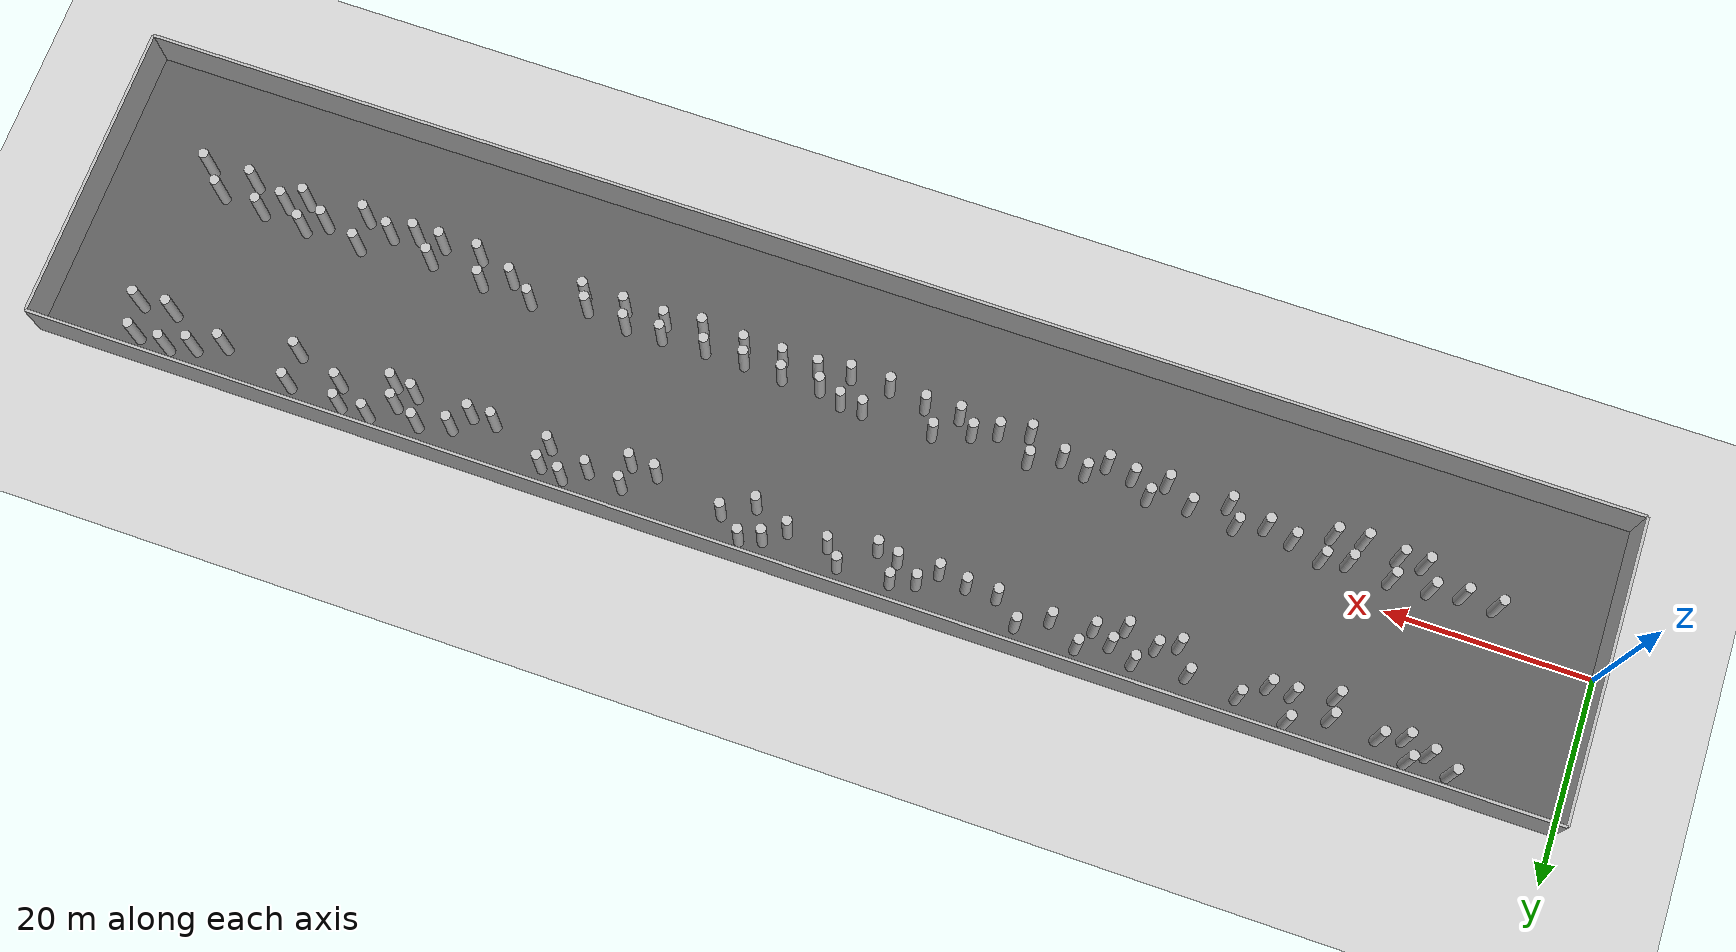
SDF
<?xml version="1.0" ?>
<sdf version="1.5">
  <world name="default">
    <plugin name="gazebo_ros_state" filename="libgazebo_ros_state.so">
      <ros>
        <namespace>/gazebo</namespace>
      </ros>
      <update_rate>20.0</update_rate>
    </plugin>

    <include><uri>model://sun</uri></include>
    <include><uri>model://ground_plane</uri></include>

    <model name="corridor_floor">
      <static>true</static>
      <pose>75 0 0.01 0 0 0</pose>
      <link name="link">
        <collision name="collision">
          <geometry><box><size>150 30 0.02</size></box></geometry>
        </collision>
        <visual name="visual">
          <geometry><box><size>150 30 0.02</size></box></geometry>
          <material>
            <ambient>0.25 0.25 0.25 1</ambient>
            <diffuse>0.35 0.35 0.35 1</diffuse>
          </material>
        </visual>
      </link>
    </model>

    <physics name="default_physics" default="0" type="ode">
      <gravity>0 0 -9.8066</gravity>
      <ode>
        <solver>
          <type>quick</type>
          <iters>10</iters>
          <sor>1.3</sor>
          <use_dynamic_moi_rescaling>0</use_dynamic_moi_rescaling>
        </solver>
        <constraints>
          <cfm>0</cfm>
          <erp>0.2</erp>
          <contact_max_correcting_vel>100</contact_max_correcting_vel>
          <contact_surface_layer>0.001</contact_surface_layer>
        </constraints>
      </ode>
      <max_step_size>0.004</max_step_size>
      <real_time_factor>1</real_time_factor>
      <real_time_update_rate>250</real_time_update_rate>
      <magnetic_field>6.0e-6 2.3e-5 -4.2e-5</magnetic_field>
    </physics>

    <model name="left_wall">
      <static>true</static>
      <pose>75 15.15 2.5 0 0 0</pose>
      <link name="link">
        <collision name="collision">
          <geometry><box><size>150 0.3 5</size></box></geometry>
        </collision>
        <visual name="visual">
          <geometry><box><size>150 0.3 5</size></box></geometry>
        </visual>
      </link>
    </model>

    <model name="right_wall">
      <static>true</static>
      <pose>75 -15.15 2.5 0 0 0</pose>
      <link name="link">
        <collision name="collision">
          <geometry><box><size>150 0.3 5</size></box></geometry>
        </collision>
        <visual name="visual">
          <geometry><box><size>150 0.3 5</size></box></geometry>
        </visual>
      </link>
    </model>

    <model name="start_wall">
      <static>true</static>
      <pose>0 0 2.5 0 0 0</pose>
      <link name="link">
        <collision name="collision">
          <geometry><box><size>0.3 30.3 5</size></box></geometry>
        </collision>
        <visual name="visual">
          <geometry><box><size>0.3 30.3 5</size></box></geometry>
        </visual>
      </link>
    </model>

    <model name="end_wall">
      <static>true</static>
      <pose>150 0 2.5 0 0 0</pose>
      <link name="link">
        <collision name="collision">
          <geometry><box><size>0.3 30.3 5</size></box></geometry>
        </collision>
        <visual name="visual">
          <geometry><box><size>0.3 30.3 5</size></box></geometry>
        </visual>
      </link>
    </model>

    <include><name>cylinder_000</name><uri>model://cylinder_r05_h5</uri><pose>24.615 -2.886 2.5 0 0 0</pose></include>
    <include><name>cylinder_001</name><uri>model://cylinder_r05_h5</uri><pose>35.591 -2.835 2.5 0 0 0</pose></include>
    <include><name>cylinder_002</name><uri>model://cylinder_r05_h5</uri><pose>30.159 -3.198 2.5 0 0 0</pose></include>
    <include><name>cylinder_003</name><uri>model://cylinder_r05_h5</uri><pose>42.795 -4.705 2.5 0 0 0</pose></include>
    <include><name>cylinder_004</name><uri>model://cylinder_r05_h5</uri><pose>44.119 -2.855 2.5 0 0 0</pose></include>
    <include><name>cylinder_005</name><uri>model://cylinder_r05_h5</uri><pose>27.093 -2.338 2.5 0 0 0</pose></include>
    <include><name>cylinder_006</name><uri>model://cylinder_r05_h5</uri><pose>26.657 -4.934 2.5 0 0 0</pose></include>
    <include><name>cylinder_007</name><uri>model://cylinder_r05_h5</uri><pose>36.683 -4.608 2.5 0 0 0</pose></include>
    <include><name>cylinder_008</name><uri>model://cylinder_r05_h5</uri><pose>20.467 -2.555 2.5 0 0 0</pose></include>
    <include><name>cylinder_009</name><uri>model://cylinder_r05_h5</uri><pose>17.854 -4.929 2.5 0 0 0</pose></include>
    <include><name>cylinder_010</name><uri>model://cylinder_r05_h5</uri><pose>20.267 -4.857 2.5 0 0 0</pose></include>
    <include><name>cylinder_011</name><uri>model://cylinder_r05_h5</uri><pose>40.149 -3.231 2.5 0 0 0</pose></include>
    <include><name>cylinder_012</name><uri>model://cylinder_r05_h5</uri><pose>16.758 -2.819 2.5 0 0 0</pose></include>
    <include><name>cylinder_013</name><uri>model://cylinder_r05_h5</uri><pose>23.809 -5.289 2.5 0 0 0</pose></include>
    <include><name>cylinder_014</name><uri>model://cylinder_r05_h5</uri><pose>32.829 -3.734 2.5 0 0 0</pose></include>
    <include><name>cylinder_015</name><uri>model://cylinder_r05_h5</uri><pose>63.267 -4.728 2.5 0 0 0</pose></include>
    <include><name>cylinder_016</name><uri>model://cylinder_r05_h5</uri><pose>59.315 -4.430 2.5 0 0 0</pose></include>
    <include><name>cylinder_017</name><uri>model://cylinder_r05_h5</uri><pose>52.834 -3.907 2.5 0 0 0</pose></include>
    <include><name>cylinder_018</name><uri>model://cylinder_r05_h5</uri><pose>74.449 -2.387 2.5 0 0 0</pose></include>
    <include><name>cylinder_019</name><uri>model://cylinder_r05_h5</uri><pose>65.239 -2.310 2.5 0 0 0</pose></include>
    <include><name>cylinder_020</name><uri>model://cylinder_r05_h5</uri><pose>55.856 -2.654 2.5 0 0 0</pose></include>
    <include><name>cylinder_021</name><uri>model://cylinder_r05_h5</uri><pose>74.334 -5.257 2.5 0 0 0</pose></include>
    <include><name>cylinder_022</name><uri>model://cylinder_r05_h5</uri><pose>56.385 -5.193 2.5 0 0 0</pose></include>
    <include><name>cylinder_023</name><uri>model://cylinder_r05_h5</uri><pose>50.360 -3.268 2.5 0 0 0</pose></include>
    <include><name>cylinder_024</name><uri>model://cylinder_r05_h5</uri><pose>46.008 -4.269 2.5 0 0 0</pose></include>
    <include><name>cylinder_025</name><uri>model://cylinder_r05_h5</uri><pose>66.719 -4.680 2.5 0 0 0</pose></include>
    <include><name>cylinder_026</name><uri>model://cylinder_r05_h5</uri><pose>70.439 -5.272 2.5 0 0 0</pose></include>
    <include><name>cylinder_027</name><uri>model://cylinder_r05_h5</uri><pose>72.218 -2.289 2.5 0 0 0</pose></include>
    <include><name>cylinder_028</name><uri>model://cylinder_r05_h5</uri><pose>48.668 -4.697 2.5 0 0 0</pose></include>
    <include><name>cylinder_029</name><uri>model://cylinder_r05_h5</uri><pose>61.674 -3.492 2.5 0 0 0</pose></include>
    <include><name>cylinder_030</name><uri>model://cylinder_r05_h5</uri><pose>76.764 -3.123 2.5 0 0 0</pose></include>
    <include><name>cylinder_031</name><uri>model://cylinder_r05_h5</uri><pose>77.496 -4.697 2.5 0 0 0</pose></include>
    <include><name>cylinder_032</name><uri>model://cylinder_r05_h5</uri><pose>80.579 -3.034 2.5 0 0 0</pose></include>
    <include><name>cylinder_033</name><uri>model://cylinder_r05_h5</uri><pose>81.035 -4.661 2.5 0 0 0</pose></include>
    <include><name>cylinder_034</name><uri>model://cylinder_r05_h5</uri><pose>84.460 -3.244 2.5 0 0 0</pose></include>
    <include><name>cylinder_035</name><uri>model://cylinder_r05_h5</uri><pose>84.910 -4.684 2.5 0 0 0</pose></include>
    <include><name>cylinder_036</name><uri>model://cylinder_r05_h5</uri><pose>88.399 -3.213 2.5 0 0 0</pose></include>
    <include><name>cylinder_037</name><uri>model://cylinder_r05_h5</uri><pose>89.206 -5.011 2.5 0 0 0</pose></include>
    <include><name>cylinder_038</name><uri>model://cylinder_r05_h5</uri><pose>92.816 -3.096 2.5 0 0 0</pose></include>
    <include><name>cylinder_039</name><uri>model://cylinder_r05_h5</uri><pose>92.923 -4.534 2.5 0 0 0</pose></include>
    <include><name>cylinder_040</name><uri>model://cylinder_r05_h5</uri><pose>96.442 -2.965 2.5 0 0 0</pose></include>
    <include><name>cylinder_041</name><uri>model://cylinder_r05_h5</uri><pose>97.010 -4.632 2.5 0 0 0</pose></include>
    <include><name>cylinder_042</name><uri>model://cylinder_r05_h5</uri><pose>100.529 -3.441 2.5 0 0 0</pose></include>
    <include><name>cylinder_043</name><uri>model://cylinder_r05_h5</uri><pose>101.212 -4.750 2.5 0 0 0</pose></include>
    <include><name>cylinder_044</name><uri>model://cylinder_r05_h5</uri><pose>127.520 -3.406 2.5 0 0 0</pose></include>
    <include><name>cylinder_045</name><uri>model://cylinder_r05_h5</uri><pose>121.123 -4.341 2.5 0 0 0</pose></include>
    <include><name>cylinder_046</name><uri>model://cylinder_r05_h5</uri><pose>123.890 -5.236 2.5 0 0 0</pose></include>
    <include><name>cylinder_047</name><uri>model://cylinder_r05_h5</uri><pose>108.336 -3.825 2.5 0 0 0</pose></include>
    <include><name>cylinder_048</name><uri>model://cylinder_r05_h5</uri><pose>116.525 -3.088 2.5 0 0 0</pose></include>
    <include><name>cylinder_049</name><uri>model://cylinder_r05_h5</uri><pose>112.096 -5.092 2.5 0 0 0</pose></include>
    <include><name>cylinder_050</name><uri>model://cylinder_r05_h5</uri><pose>131.915 -3.957 2.5 0 0 0</pose></include>
    <include><name>cylinder_051</name><uri>model://cylinder_r05_h5</uri><pose>129.461 -2.260 2.5 0 0 0</pose></include>
    <include><name>cylinder_052</name><uri>model://cylinder_r05_h5</uri><pose>133.978 -2.564 2.5 0 0 0</pose></include>
    <include><name>cylinder_053</name><uri>model://cylinder_r05_h5</uri><pose>115.979 -5.033 2.5 0 0 0</pose></include>
    <include><name>cylinder_054</name><uri>model://cylinder_r05_h5</uri><pose>118.659 -5.050 2.5 0 0 0</pose></include>
    <include><name>cylinder_055</name><uri>model://cylinder_r05_h5</uri><pose>111.096 -2.577 2.5 0 0 0</pose></include>
    <include><name>cylinder_056</name><uri>model://cylinder_r05_h5</uri><pose>105.966 -2.357 2.5 0 0 0</pose></include>
    <include><name>cylinder_057</name><uri>model://cylinder_r05_h5</uri><pose>130.032 -4.969 2.5 0 0 0</pose></include>
    <include><name>cylinder_058</name><uri>model://cylinder_r05_h5</uri><pose>123.738 -2.214 2.5 0 0 0</pose></include>
    <include><name>cylinder_059</name><uri>model://cylinder_r05_h5</uri><pose>13.771 -3.271 2.5 0 0 0</pose></include>
    <include><name>cylinder_060</name><uri>model://cylinder_r05_h5</uri><pose>10.510 -3.174 2.5 0 0 0</pose></include>
    <include><name>cylinder_061</name><uri>model://cylinder_r05_h5</uri><pose>138.345 -2.997 2.5 0 0 0</pose></include>
    <include><name>cylinder_062</name><uri>model://cylinder_r05_h5</uri><pose>140.439 -5.195 2.5 0 0 0</pose></include>
    <include><name>cylinder_063</name><uri>model://cylinder_r05_h5</uri><pose>135.594 -5.064 2.5 0 0 0</pose></include>
    <include><name>cylinder_064</name><uri>model://cylinder_r05_h5</uri><pose>60.347 10.344 2.5 0 0 0</pose></include>
    <include><name>cylinder_065</name><uri>model://cylinder_r05_h5</uri><pose>26.006 13.436 2.5 0 0 0</pose></include>
    <include><name>cylinder_066</name><uri>model://cylinder_r05_h5</uri><pose>22.270 11.888 2.5 0 0 0</pose></include>
    <include><name>cylinder_067</name><uri>model://cylinder_r05_h5</uri><pose>94.757 11.746 2.5 0 0 0</pose></include>
    <include><name>cylinder_068</name><uri>model://cylinder_r05_h5</uri><pose>30.833 12.636 2.5 0 0 0</pose></include>
    <include><name>cylinder_069</name><uri>model://cylinder_r05_h5</uri><pose>108.556 11.931 2.5 0 0 0</pose></include>
    <include><name>cylinder_070</name><uri>model://cylinder_r05_h5</uri><pose>124.861 9.781 2.5 0 0 0</pose></include>
    <include><name>cylinder_071</name><uri>model://cylinder_r05_h5</uri><pose>96.916 13.168 2.5 0 0 0</pose></include>
    <include><name>cylinder_072</name><uri>model://cylinder_r05_h5</uri><pose>39.218 10.695 2.5 0 0 0</pose></include>
    <include><name>cylinder_073</name><uri>model://cylinder_r05_h5</uri><pose>78.566 9.818 2.5 0 0 0</pose></include>
    <include><name>cylinder_074</name><uri>model://cylinder_r05_h5</uri><pose>45.141 10.882 2.5 0 0 0</pose></include>
    <include><name>cylinder_075</name><uri>model://cylinder_r05_h5</uri><pose>91.281 12.149 2.5 0 0 0</pose></include>
    <include><name>cylinder_076</name><uri>model://cylinder_r05_h5</uri><pose>88.487 10.000 2.5 0 0 0</pose></include>
    <include><name>cylinder_077</name><uri>model://cylinder_r05_h5</uri><pose>104.733 10.224 2.5 0 0 0</pose></include>
    <include><name>cylinder_078</name><uri>model://cylinder_r05_h5</uri><pose>115.062 9.729 2.5 0 0 0</pose></include>
    <include><name>cylinder_079</name><uri>model://cylinder_r05_h5</uri><pose>26.115 10.791 2.5 0 0 0</pose></include>
    <include><name>cylinder_080</name><uri>model://cylinder_r05_h5</uri><pose>54.546 10.828 2.5 0 0 0</pose></include>
    <include><name>cylinder_081</name><uri>model://cylinder_r05_h5</uri><pose>120.026 11.397 2.5 0 0 0</pose></include>
    <include><name>cylinder_082</name><uri>model://cylinder_r05_h5</uri><pose>43.269 11.765 2.5 0 0 0</pose></include>
    <include><name>cylinder_083</name><uri>model://cylinder_r05_h5</uri><pose>107.094 10.207 2.5 0 0 0</pose></include>
    <include><name>cylinder_084</name><uri>model://cylinder_r05_h5</uri><pose>17.609 12.093 2.5 0 0 0</pose></include>
    <include><name>cylinder_085</name><uri>model://cylinder_r05_h5</uri><pose>66.437 10.109 2.5 0 0 0</pose></include>
    <include><name>cylinder_086</name><uri>model://cylinder_r05_h5</uri><pose>64.450 12.665 2.5 0 0 0</pose></include>
    <include><name>cylinder_087</name><uri>model://cylinder_r05_h5</uri><pose>22.287 9.800 2.5 0 0 0</pose></include>
    <include><name>cylinder_088</name><uri>model://cylinder_r05_h5</uri><pose>124.698 13.010 2.5 0 0 0</pose></include>
    <include><name>cylinder_089</name><uri>model://cylinder_r05_h5</uri><pose>114.292 11.587 2.5 0 0 0</pose></include>
    <include><name>cylinder_090</name><uri>model://cylinder_r05_h5</uri><pose>49.216 11.327 2.5 0 0 0</pose></include>
    <include><name>cylinder_091</name><uri>model://cylinder_r05_h5</uri><pose>137.930 9.840 2.5 0 0 0</pose></include>
    <include><name>cylinder_092</name><uri>model://cylinder_r05_h5</uri><pose>77.035 12.642 2.5 0 0 0</pose></include>
    <include><name>cylinder_093</name><uri>model://cylinder_r05_h5</uri><pose>71.024 11.300 2.5 0 0 0</pose></include>
    <include><name>cylinder_094</name><uri>model://cylinder_r05_h5</uri><pose>81.514 11.537 2.5 0 0 0</pose></include>
    <include><name>cylinder_095</name><uri>model://cylinder_r05_h5</uri><pose>46.214 12.990 2.5 0 0 0</pose></include>
    <include><name>cylinder_096</name><uri>model://cylinder_r05_h5</uri><pose>12.887 12.161 2.5 0 0 0</pose></include>
    <include><name>cylinder_097</name><uri>model://cylinder_r05_h5</uri><pose>119.374 13.349 2.5 0 0 0</pose></include>
    <include><name>cylinder_098</name><uri>model://cylinder_r05_h5</uri><pose>91.108 9.775 2.5 0 0 0</pose></include>
    <include><name>cylinder_099</name><uri>model://cylinder_r05_h5</uri><pose>37.259 9.805 2.5 0 0 0</pose></include>
    <include><name>cylinder_100</name><uri>model://cylinder_r05_h5</uri><pose>99.192 12.712 2.5 0 0 0</pose></include>
    <include><name>cylinder_101</name><uri>model://cylinder_r05_h5</uri><pose>140.376 13.141 2.5 0 0 0</pose></include>
    <include><name>cylinder_102</name><uri>model://cylinder_r05_h5</uri><pose>52.173 12.846 2.5 0 0 0</pose></include>
    <include><name>cylinder_103</name><uri>model://cylinder_r05_h5</uri><pose>62.062 11.997 2.5 0 0 0</pose></include>
    <include><name>cylinder_104</name><uri>model://cylinder_r05_h5</uri><pose>111.726 12.728 2.5 0 0 0</pose></include>
    <include><name>cylinder_105</name><uri>model://cylinder_r05_h5</uri><pose>69.601 12.807 2.5 0 0 0</pose></include>
    <include><name>cylinder_106</name><uri>model://cylinder_r05_h5</uri><pose>57.577 10.792 2.5 0 0 0</pose></include>
    <include><name>cylinder_107</name><uri>model://cylinder_r05_h5</uri><pose>15.297 11.405 2.5 0 0 0</pose></include>
    <include><name>cylinder_108</name><uri>model://cylinder_r05_h5</uri><pose>75.048 11.114 2.5 0 0 0</pose></include>
    <include><name>cylinder_109</name><uri>model://cylinder_r05_h5</uri><pose>112.840 10.070 2.5 0 0 0</pose></include>
    <include><name>cylinder_110</name><uri>model://cylinder_r05_h5</uri><pose>98.926 10.670 2.5 0 0 0</pose></include>
    <include><name>cylinder_111</name><uri>model://cylinder_r05_h5</uri><pose>14.600 13.368 2.5 0 0 0</pose></include>
    <include><name>cylinder_112</name><uri>model://cylinder_r05_h5</uri><pose>42.296 9.867 2.5 0 0 0</pose></include>
    <include><name>cylinder_113</name><uri>model://cylinder_r05_h5</uri><pose>134.687 12.521 2.5 0 0 0</pose></include>
    <include><name>cylinder_114</name><uri>model://cylinder_r05_h5</uri><pose>131.921 11.383 2.5 0 0 0</pose></include>
    <include><name>cylinder_115</name><uri>model://cylinder_r05_h5</uri><pose>64.366 10.557 2.5 0 0 0</pose></include>
    <include><name>cylinder_116</name><uri>model://cylinder_r05_h5</uri><pose>28.422 10.800 2.5 0 0 0</pose></include>
    <include><name>cylinder_117</name><uri>model://cylinder_r05_h5</uri><pose>35.776 12.232 2.5 0 0 0</pose></include>
    <include><name>cylinder_118</name><uri>model://cylinder_r05_h5</uri><pose>141.271 9.989 2.5 0 0 0</pose></include>
    <include><name>cylinder_119</name><uri>model://cylinder_r05_h5</uri><pose>40.860 12.721 2.5 0 0 0</pose></include>
    <include><name>cylinder_120</name><uri>model://cylinder_r05_h5</uri><pose>79.148 13.328 2.5 0 0 0</pose></include>
    <include><name>cylinder_121</name><uri>model://cylinder_r05_h5</uri><pose>116.479 13.403 2.5 0 0 0</pose></include>
    <include><name>cylinder_122</name><uri>model://cylinder_r05_h5</uri><pose>10.559 13.269 2.5 0 0 0</pose></include>
    <include><name>cylinder_123</name><uri>model://cylinder_r05_h5</uri><pose>137.208 13.279 2.5 0 0 0</pose></include>

  </world>
</sdf>

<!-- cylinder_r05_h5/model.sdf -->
<sdf version="1.5">
  <model name="cylinder_r05_h5">
    <static>true</static>
    <link name="link">
      <collision name="collision">
        <geometry>
          <cylinder>
            <radius>0.5</radius>
            <length>5</length>
          </cylinder>
        </geometry>
      </collision>
      <visual name="visual">
        <geometry>
          <cylinder>
            <radius>0.5</radius>
            <length>5</length>
          </cylinder>
        </geometry>
        <material>
          <ambient>0.5 0.5 0.5 1</ambient>
          <diffuse>0.75 0.75 0.75 1</diffuse>
        </material>
      </visual>
    </link>
  </model>
</sdf>
